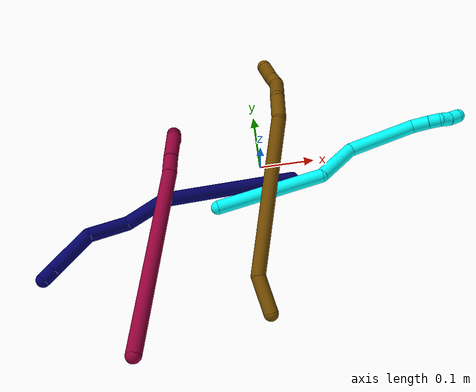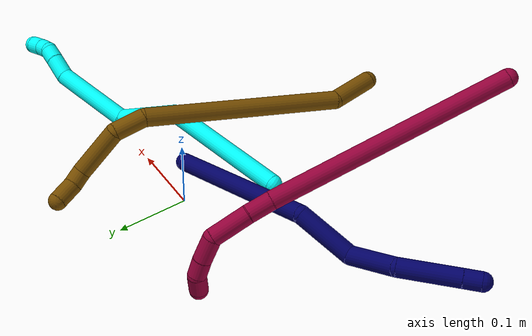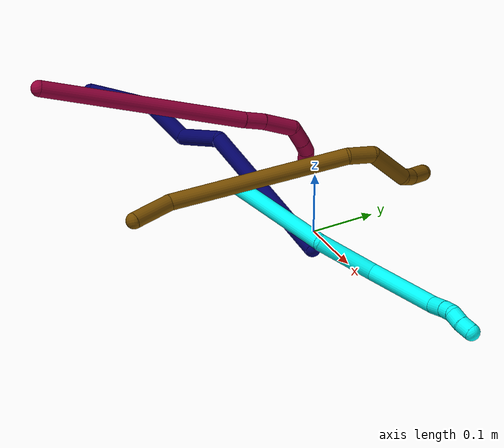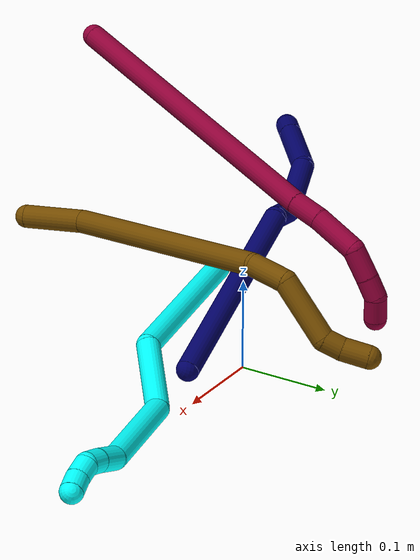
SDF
<sdf version="1.7">
 <world name="default">
  <model name="photoneo_s_sensor">
   <static>1</static>
   <pose>0 0 2 1.57079 1.57079 3.14159</pose>
   <link name="link">
    <inertial><mass>0.1</mass></inertial>
    <sensor name="sensor" type="depth">
     <update_rate>30</update_rate>
     <camera>
      <horizontal_fov>1.22</horizontal_fov>
      <image><width>1920</width><height>1200</height><format>B8G8R8</format></image>
      <clip><near>0.1</near><far>4</far></clip>
      <depth_camera><output>points</output></depth_camera>
     </camera>
     <plugin name="camera_plugin" filename="libgazebo_ros_depth_camera.so">
      <baseline>0.2</baseline>
      <alwaysOn>1</alwaysOn>
      <updateRate>0.0</updateRate>
      <cameraName>camera_ir</cameraName>
      <imageTopicName>/camera/color/image_raw</imageTopicName>
      <cameraInfoTopicName>/camera/color/camera_info</cameraInfoTopicName>
      <depthImageTopicName>/camera/depth/image_raw</depthImageTopicName>
      <depthImageCameraInfoTopicName>/camera/depth/camera_info</depthImageCameraInfoTopicName>
      <pointCloudTopicName>/camera/depth/points</pointCloudTopicName>
      <frameName>fr_optical</frameName>
      <pointCloudCutoff>0.1</pointCloudCutoff>
      <pointCloudCutoffMax>2.0</pointCloudCutoffMax>
      <distortionK1>0</distortionK1>
      <distortionK2>0</distortionK2>
      <distortionK3>0</distortionK3>
      <distortionT1>0</distortionT1>
      <distortionT2>0</distortionT2>
      <CxPrime>0</CxPrime>
      <Cx>0</Cx>
      <Cy>0</Cy>
      <focalLength>0</focalLength>
      <hackBaseline>0</hackBaseline>
     </plugin>
    </sensor>
   </link>
  </model>
  <model name="bin">
   <static>1</static>
   <link name="bottom">
    <collision name="collision-bottom">
     <pose>0 0 -0.01 0 -0 0</pose>
     <geometry><box><size>0.8 0.6 0.02</size></box></geometry>
     <surface>
      <friction><ode><mu>100</mu><mu2>100</mu2></ode></friction>
      <contact><collide_bitmask>65535</collide_bitmask></contact>
     </surface>
    </collision>
   </link>
   <link name="west_wall">
    <collision name="collision-west_wall">
     <pose>-0.41 0 0.1 0 -0 0</pose>
     <geometry><box><size>0.02 0.6 0.2</size></box></geometry>
     <surface>
      <friction><ode><mu>100</mu><mu2>100</mu2></ode></friction>
      <contact><collide_bitmask>65535</collide_bitmask></contact>
     </surface>
    </collision>
   </link>
   <link name="east_wall">
    <collision name="collision-east_wall">
     <pose>0.41 0 0.1 0 -0 0</pose>
     <geometry><box><size>0.02 0.6 0.2</size></box></geometry>
     <surface>
      <friction><ode><mu>100</mu><mu2>100</mu2></ode></friction>
      <contact><collide_bitmask>65535</collide_bitmask></contact>
     </surface>
    </collision>
   </link>
   <link name="south_wall">
    <collision name="collision-south_wall">
     <pose>0 -0.31 0.1 0 -0 0</pose>
     <geometry><box><size>0.8 0.02 0.2</size></box></geometry>
     <surface>
      <friction><ode><mu>100</mu><mu2>100</mu2></ode></friction>
      <contact><collide_bitmask>65535</collide_bitmask></contact>
     </surface>
    </collision>
   </link>
   <link name="north_wall">
    <collision name="collision-north_wall">
     <pose>0 0.31 0.1 0 -0 0</pose>
     <geometry><box><size>0.8 0.02 0.2</size></box></geometry>
     <surface>
      <friction><ode><mu>100</mu><mu2>100</mu2></ode></friction>
      <contact><collide_bitmask>65535</collide_bitmask></contact>
     </surface>
    </collision>
   </link>
  </model>
  <model name="3">
   <static>0</static>
   <link name="3">
    <collision name="collision-cylinder-e_1_1_4">
     <pose>0.067247 0.026626 0.06522 -0.387601 0.762175 -0.156953</pose>
     <geometry><cylinder><radius>0.0125</radius><length>0.194779</length></cylinder></geometry>
     <surface>
      <friction><ode><mu>1.16</mu><mu2>1.16</mu2><slip1>0</slip1><slip2>0</slip2></ode></friction>
      <contact><ode><kp>1e+06</kp><kd>1</kd><max_vel>0</max_vel><min_depth>0.001</min_depth></ode></contact>
     </surface>
    </collision>
    <visual name="visual-cylinder-e_1_1_4">
     <pose>0.067247 0.026626 0.06522 -0.387601 0.762175 -0.156953</pose>
     <geometry><cylinder><radius>0.0125</radius><length>0.194779</length></cylinder></geometry>
     <material><ambient>0.003922 1 0.996078 1</ambient></material>
    </visual>
    <collision name="collision-cylinder-e_2_4_5">
     <pose>0.152015 0.087111 0.152813 -0.986867 0.407554 -0.221362</pose>
     <geometry><cylinder><radius>0.0125</radius><length>0.088407</length></cylinder></geometry>
     <surface>
      <friction><ode><mu>1.16</mu><mu2>1.16</mu2><slip1>0</slip1><slip2>0</slip2></ode></friction>
      <contact><ode><kp>1e+06</kp><kd>1</kd><max_vel>0</max_vel><min_depth>0.001</min_depth></ode></contact>
     </surface>
    </collision>
    <visual name="visual-cylinder-e_2_4_5">
     <pose>0.152015 0.087111 0.152813 -0.986867 0.407554 -0.221362</pose>
     <geometry><cylinder><radius>0.0125</radius><length>0.088407</length></cylinder></geometry>
     <material><ambient>0.003922 1 0.996078 1</ambient></material>
    </visual>
    <collision name="collision-cylinder-e_3_5_6">
     <pose>0.209152 0.137318 0.220303 -0.347661 0.690135 -0.126073</pose>
     <geometry><cylinder><radius>0.0125</radius><length>0.124454</length></cylinder></geometry>
     <surface>
      <friction><ode><mu>1.16</mu><mu2>1.16</mu2><slip1>0</slip1><slip2>0</slip2></ode></friction>
      <contact><ode><kp>1e+06</kp><kd>1</kd><max_vel>0</max_vel><min_depth>0.001</min_depth></ode></contact>
     </surface>
    </collision>
    <visual name="visual-cylinder-e_3_5_6">
     <pose>0.209152 0.137318 0.220303 -0.347661 0.690135 -0.126073</pose>
     <geometry><cylinder><radius>0.0125</radius><length>0.124454</length></cylinder></geometry>
     <material><ambient>0.003922 1 0.996078 1</ambient></material>
    </visual>
    <collision name="collision-cylinder-e_4_6_7">
     <pose>0.258639 0.152165 0.277752 0.121227 0.671313 0.042336</pose>
     <geometry><cylinder><radius>0.0125</radius><length>0.031737</length></cylinder></geometry>
     <surface>
      <friction><ode><mu>1.16</mu><mu2>1.16</mu2><slip1>0</slip1><slip2>0</slip2></ode></friction>
      <contact><ode><kp>1e+06</kp><kd>1</kd><max_vel>0</max_vel><min_depth>0.001</min_depth></ode></contact>
     </surface>
    </collision>
    <visual name="visual-cylinder-e_4_6_7">
     <pose>0.258639 0.152165 0.277752 0.121227 0.671313 0.042336</pose>
     <geometry><cylinder><radius>0.0125</radius><length>0.031737</length></cylinder></geometry>
     <material><ambient>0.003922 1 0.996078 1</ambient></material>
    </visual>
    <collision name="collision-cylinder-e_5_7_8">
     <pose>0.275423 0.150243 0.297522 0.056295 0.748236 0.022107</pose>
     <geometry><cylinder><radius>0.0125</radius><length>0.020324</length></cylinder></geometry>
     <surface>
      <friction><ode><mu>1.16</mu><mu2>1.16</mu2><slip1>0</slip1><slip2>0</slip2></ode></friction>
      <contact><ode><kp>1e+06</kp><kd>1</kd><max_vel>0</max_vel><min_depth>0.001</min_depth></ode></contact>
     </surface>
    </collision>
    <visual name="visual-cylinder-e_5_7_8">
     <pose>0.275423 0.150243 0.297522 0.056295 0.748236 0.022107</pose>
     <geometry><cylinder><radius>0.0125</radius><length>0.020324</length></cylinder></geometry>
     <material><ambient>0.003922 1 0.996078 1</ambient></material>
    </visual>
    <collision name="collision-cylinder-e_6_8_9">
     <pose>0.290436 0.153939 0.309224 -0.767255 0.939043 -0.403984</pose>
     <geometry><cylinder><radius>0.0125</radius><length>0.020073</length></cylinder></geometry>
     <surface>
      <friction><ode><mu>1.16</mu><mu2>1.16</mu2><slip1>0</slip1><slip2>0</slip2></ode></friction>
      <contact><ode><kp>1e+06</kp><kd>1</kd><max_vel>0</max_vel><min_depth>0.001</min_depth></ode></contact>
     </surface>
    </collision>
    <visual name="visual-cylinder-e_6_8_9">
     <pose>0.290436 0.153939 0.309224 -0.767255 0.939043 -0.403984</pose>
     <geometry><cylinder><radius>0.0125</radius><length>0.020073</length></cylinder></geometry>
     <material><ambient>0.003922 1 0.996078 1</ambient></material>
    </visual>
    <collision name="collision-cylinder-e_7_9_2">
     <pose>0.30544 0.163079 0.318907 -0.748071 0.751541 -0.307266</pose>
     <geometry><cylinder><radius>0.0125</radius><length>0.020226</length></cylinder></geometry>
     <surface>
      <friction><ode><mu>1.16</mu><mu2>1.16</mu2><slip1>0</slip1><slip2>0</slip2></ode></friction>
      <contact><ode><kp>1e+06</kp><kd>1</kd><max_vel>0</max_vel><min_depth>0.001</min_depth></ode></contact>
     </surface>
    </collision>
    <visual name="visual-cylinder-e_7_9_2">
     <pose>0.30544 0.163079 0.318907 -0.748071 0.751541 -0.307266</pose>
     <geometry><cylinder><radius>0.0125</radius><length>0.020226</length></cylinder></geometry>
     <material><ambient>0.003922 1 0.996078 1</ambient></material>
    </visual>
    <collision name="collision-sphere-2">
     <pose>0.312345 0.168105 0.324323 0 -0 0</pose>
     <geometry><sphere><radius>0.0125</radius></sphere></geometry>
     <surface>
      <friction><ode><mu>1.16</mu><mu2>1.16</mu2><slip1>0</slip1><slip2>0</slip2></ode></friction>
      <contact><ode><kp>1e+06</kp><kd>1</kd><max_vel>0</max_vel><min_depth>0.001</min_depth></ode></contact>
     </surface>
    </collision>
    <visual name="visual-sphere-2">
     <pose>0.312345 0.168105 0.324323 0 -0 0</pose>
     <geometry><sphere><radius>0.0125</radius></sphere></geometry>
     <material><ambient>0.003922 1 0.996078 1</ambient></material>
    </visual>
    <collision name="collision-sphere-9">
     <pose>0.298535 0.158053 0.313491 0 -0 0</pose>
     <geometry><sphere><radius>0.0125</radius></sphere></geometry>
     <surface>
      <friction><ode><mu>1.16</mu><mu2>1.16</mu2><slip1>0</slip1><slip2>0</slip2></ode></friction>
      <contact><ode><kp>1e+06</kp><kd>1</kd><max_vel>0</max_vel><min_depth>0.001</min_depth></ode></contact>
     </surface>
    </collision>
    <visual name="visual-sphere-9">
     <pose>0.298535 0.158053 0.313491 0 -0 0</pose>
     <geometry><sphere><radius>0.0125</radius></sphere></geometry>
     <material><ambient>0.003922 1 0.996078 1</ambient></material>
    </visual>
    <collision name="collision-sphere-4">
     <pose>0.134494 0.053252 0.130439 0 -0 0</pose>
     <geometry><sphere><radius>0.0125</radius></sphere></geometry>
     <surface>
      <friction><ode><mu>1.16</mu><mu2>1.16</mu2><slip1>0</slip1><slip2>0</slip2></ode></friction>
      <contact><ode><kp>1e+06</kp><kd>1</kd><max_vel>0</max_vel><min_depth>0.001</min_depth></ode></contact>
     </surface>
    </collision>
    <visual name="visual-sphere-4">
     <pose>0.134494 0.053252 0.130439 0 -0 0</pose>
     <geometry><sphere><radius>0.0125</radius></sphere></geometry>
     <material><ambient>0.003922 1 0.996078 1</ambient></material>
    </visual>
    <collision name="collision-sphere-1">
     <geometry><sphere><radius>0.0125</radius></sphere></geometry>
     <surface>
      <friction><ode><mu>1.16</mu><mu2>1.16</mu2><slip1>0</slip1><slip2>0</slip2></ode></friction>
      <contact><ode><kp>1e+06</kp><kd>1</kd><max_vel>0</max_vel><min_depth>0.001</min_depth></ode></contact>
     </surface>
    </collision>
    <visual name="visual-sphere-1">
     <geometry><sphere><radius>0.0125</radius></sphere></geometry>
     <material><ambient>0.003922 1 0.996078 1</ambient></material>
    </visual>
    <collision name="collision-sphere-8">
     <pose>0.282337 0.149824 0.304958 0 -0 0</pose>
     <geometry><sphere><radius>0.0125</radius></sphere></geometry>
     <surface>
      <friction><ode><mu>1.16</mu><mu2>1.16</mu2><slip1>0</slip1><slip2>0</slip2></ode></friction>
      <contact><ode><kp>1e+06</kp><kd>1</kd><max_vel>0</max_vel><min_depth>0.001</min_depth></ode></contact>
     </surface>
    </collision>
    <visual name="visual-sphere-8">
     <pose>0.282337 0.149824 0.304958 0 -0 0</pose>
     <geometry><sphere><radius>0.0125</radius></sphere></geometry>
     <material><ambient>0.003922 1 0.996078 1</ambient></material>
    </visual>
    <collision name="collision-sphere-5">
     <pose>0.169536 0.120969 0.175187 0 -0 0</pose>
     <geometry><sphere><radius>0.0125</radius></sphere></geometry>
     <surface>
      <friction><ode><mu>1.16</mu><mu2>1.16</mu2><slip1>0</slip1><slip2>0</slip2></ode></friction>
      <contact><ode><kp>1e+06</kp><kd>1</kd><max_vel>0</max_vel><min_depth>0.001</min_depth></ode></contact>
     </surface>
    </collision>
    <visual name="visual-sphere-5">
     <pose>0.169536 0.120969 0.175187 0 -0 0</pose>
     <geometry><sphere><radius>0.0125</radius></sphere></geometry>
     <material><ambient>0.003922 1 0.996078 1</ambient></material>
    </visual>
    <collision name="collision-sphere-6">
     <pose>0.248768 0.153668 0.265418 0 -0 0</pose>
     <geometry><sphere><radius>0.0125</radius></sphere></geometry>
     <surface>
      <friction><ode><mu>1.16</mu><mu2>1.16</mu2><slip1>0</slip1><slip2>0</slip2></ode></friction>
      <contact><ode><kp>1e+06</kp><kd>1</kd><max_vel>0</max_vel><min_depth>0.001</min_depth></ode></contact>
     </surface>
    </collision>
    <visual name="visual-sphere-6">
     <pose>0.248768 0.153668 0.265418 0 -0 0</pose>
     <geometry><sphere><radius>0.0125</radius></sphere></geometry>
     <material><ambient>0.003922 1 0.996078 1</ambient></material>
    </visual>
    <collision name="collision-sphere-7">
     <pose>0.268509 0.150662 0.290086 0 -0 0</pose>
     <geometry><sphere><radius>0.0125</radius></sphere></geometry>
     <surface>
      <friction><ode><mu>1.16</mu><mu2>1.16</mu2><slip1>0</slip1><slip2>0</slip2></ode></friction>
      <contact><ode><kp>1e+06</kp><kd>1</kd><max_vel>0</max_vel><min_depth>0.001</min_depth></ode></contact>
     </surface>
    </collision>
    <visual name="visual-sphere-7">
     <pose>0.268509 0.150662 0.290086 0 -0 0</pose>
     <geometry><sphere><radius>0.0125</radius></sphere></geometry>
     <material><ambient>0.003922 1 0.996078 1</ambient></material>
    </visual>
    <inertial>
     <pose>0.156762 0.088497 0.1623 0 -0 0</pose>
     <mass>0.5</mass>
     <inertia>
      <ixx>0.000558</ixx>
      <ixy>0</ixy>
      <ixz>0</ixz>
      <iyy>0.000713</iyy>
      <iyz>0</iyz>
      <izz>-0.000802</izz>
     </inertia>
    </inertial>
   </link>
   <pose>-0.08728 -0.085244 0.059307 -0.835069 0.362016 -0.569411</pose>
  </model>
  <model name="7">
   <static>0</static>
   <link name="7">
    <collision name="collision-cylinder-e_1_1_4">
     <pose>0.011359 0.000989 -0.002343 -2.74195 1.35057 -2.64623</pose>
     <geometry><cylinder><radius>0.0125</radius><length>0.023281</length></cylinder></geometry>
     <surface>
      <friction><ode><mu>1.16</mu><mu2>1.16</mu2><slip1>0</slip1><slip2>0</slip2></ode></friction>
      <contact><ode><kp>1e+06</kp><kd>1</kd><max_vel>0</max_vel><min_depth>0.001</min_depth></ode></contact>
     </surface>
    </collision>
    <visual name="visual-cylinder-e_1_1_4">
     <pose>0.011359 0.000989 -0.002343 -2.74195 1.35057 -2.64623</pose>
     <geometry><cylinder><radius>0.0125</radius><length>0.023281</length></cylinder></geometry>
     <material><ambient>0.003922 0 0.403922 1</ambient></material>
    </visual>
    <collision name="collision-cylinder-e_2_4_5">
     <pose>0.061977 0.005655 -0.012671 -2.7102 1.35049 -2.60747</pose>
     <geometry><cylinder><radius>0.0125</radius><length>0.080462</length></cylinder></geometry>
     <surface>
      <friction><ode><mu>1.16</mu><mu2>1.16</mu2><slip1>0</slip1><slip2>0</slip2></ode></friction>
      <contact><ode><kp>1e+06</kp><kd>1</kd><max_vel>0</max_vel><min_depth>0.001</min_depth></ode></contact>
     </surface>
    </collision>
    <visual name="visual-cylinder-e_2_4_5">
     <pose>0.061977 0.005655 -0.012671 -2.7102 1.35049 -2.60747</pose>
     <geometry><cylinder><radius>0.0125</radius><length>0.080462</length></cylinder></geometry>
     <material><ambient>0.003922 0 0.403922 1</ambient></material>
    </visual>
    <collision name="collision-cylinder-e_3_5_6">
     <pose>0.128705 0.027955 -0.034258 -2.20152 0.872413 -1.48492</pose>
     <geometry><cylinder><radius>0.0125</radius><length>0.071733</length></cylinder></geometry>
     <surface>
      <friction><ode><mu>1.16</mu><mu2>1.16</mu2><slip1>0</slip1><slip2>0</slip2></ode></friction>
      <contact><ode><kp>1e+06</kp><kd>1</kd><max_vel>0</max_vel><min_depth>0.001</min_depth></ode></contact>
     </surface>
    </collision>
    <visual name="visual-cylinder-e_3_5_6">
     <pose>0.128705 0.027955 -0.034258 -2.20152 0.872413 -1.48492</pose>
     <geometry><cylinder><radius>0.0125</radius><length>0.071733</length></cylinder></geometry>
     <material><ambient>0.003922 0 0.403922 1</ambient></material>
    </visual>
    <collision name="collision-cylinder-e_4_6_7">
     <pose>0.186737 0.041406 -0.072871 2.93764 0.874633 2.71062</pose>
     <geometry><cylinder><radius>0.0125</radius><length>0.079663</length></cylinder></geometry>
     <surface>
      <friction><ode><mu>1.16</mu><mu2>1.16</mu2><slip1>0</slip1><slip2>0</slip2></ode></friction>
      <contact><ode><kp>1e+06</kp><kd>1</kd><max_vel>0</max_vel><min_depth>0.001</min_depth></ode></contact>
     </surface>
    </collision>
    <visual name="visual-cylinder-e_4_6_7">
     <pose>0.186737 0.041406 -0.072871 2.93764 0.874633 2.71062</pose>
     <geometry><cylinder><radius>0.0125</radius><length>0.079663</length></cylinder></geometry>
     <material><ambient>0.003922 0 0.403922 1</ambient></material>
    </visual>
    <collision name="collision-cylinder-e_5_7_2">
     <pose>0.300951 0.100164 -0.160372 -2.34477 0.752203 -1.50703</pose>
     <geometry><cylinder><radius>0.0125</radius><length>0.244862</length></cylinder></geometry>
     <surface>
      <friction><ode><mu>1.16</mu><mu2>1.16</mu2><slip1>0</slip1><slip2>0</slip2></ode></friction>
      <contact><ode><kp>1e+06</kp><kd>1</kd><max_vel>0</max_vel><min_depth>0.001</min_depth></ode></contact>
     </surface>
    </collision>
    <visual name="visual-cylinder-e_5_7_2">
     <pose>0.300951 0.100164 -0.160372 -2.34477 0.752203 -1.50703</pose>
     <geometry><cylinder><radius>0.0125</radius><length>0.244862</length></cylinder></geometry>
     <material><ambient>0.003922 0 0.403922 1</ambient></material>
    </visual>
    <collision name="collision-sphere-2">
     <pose>0.384602 0.164095 -0.22286 0 -0 0</pose>
     <geometry><sphere><radius>0.0125</radius></sphere></geometry>
     <surface>
      <friction><ode><mu>1.16</mu><mu2>1.16</mu2><slip1>0</slip1><slip2>0</slip2></ode></friction>
      <contact><ode><kp>1e+06</kp><kd>1</kd><max_vel>0</max_vel><min_depth>0.001</min_depth></ode></contact>
     </surface>
    </collision>
    <visual name="visual-sphere-2">
     <pose>0.384602 0.164095 -0.22286 0 -0 0</pose>
     <geometry><sphere><radius>0.0125</radius></sphere></geometry>
     <material><ambient>0.003922 0 0.403922 1</ambient></material>
    </visual>
    <collision name="collision-sphere-7">
     <pose>0.2173 0.036233 -0.097885 0 -0 0</pose>
     <geometry><sphere><radius>0.0125</radius></sphere></geometry>
     <surface>
      <friction><ode><mu>1.16</mu><mu2>1.16</mu2><slip1>0</slip1><slip2>0</slip2></ode></friction>
      <contact><ode><kp>1e+06</kp><kd>1</kd><max_vel>0</max_vel><min_depth>0.001</min_depth></ode></contact>
     </surface>
    </collision>
    <visual name="visual-sphere-7">
     <pose>0.2173 0.036233 -0.097885 0 -0 0</pose>
     <geometry><sphere><radius>0.0125</radius></sphere></geometry>
     <material><ambient>0.003922 0 0.403922 1</ambient></material>
    </visual>
    <collision name="collision-sphere-6">
     <pose>0.156174 0.04658 -0.047858 0 -0 0</pose>
     <geometry><sphere><radius>0.0125</radius></sphere></geometry>
     <surface>
      <friction><ode><mu>1.16</mu><mu2>1.16</mu2><slip1>0</slip1><slip2>0</slip2></ode></friction>
      <contact><ode><kp>1e+06</kp><kd>1</kd><max_vel>0</max_vel><min_depth>0.001</min_depth></ode></contact>
     </surface>
    </collision>
    <visual name="visual-sphere-6">
     <pose>0.156174 0.04658 -0.047858 0 -0 0</pose>
     <geometry><sphere><radius>0.0125</radius></sphere></geometry>
     <material><ambient>0.003922 0 0.403922 1</ambient></material>
    </visual>
    <collision name="collision-sphere-5">
     <pose>0.101236 0.009331 -0.020658 0 -0 0</pose>
     <geometry><sphere><radius>0.0125</radius></sphere></geometry>
     <surface>
      <friction><ode><mu>1.16</mu><mu2>1.16</mu2><slip1>0</slip1><slip2>0</slip2></ode></friction>
      <contact><ode><kp>1e+06</kp><kd>1</kd><max_vel>0</max_vel><min_depth>0.001</min_depth></ode></contact>
     </surface>
    </collision>
    <visual name="visual-sphere-5">
     <pose>0.101236 0.009331 -0.020658 0 -0 0</pose>
     <geometry><sphere><radius>0.0125</radius></sphere></geometry>
     <material><ambient>0.003922 0 0.403922 1</ambient></material>
    </visual>
    <collision name="collision-sphere-1">
     <geometry><sphere><radius>0.0125</radius></sphere></geometry>
     <surface>
      <friction><ode><mu>1.16</mu><mu2>1.16</mu2><slip1>0</slip1><slip2>0</slip2></ode></friction>
      <contact><ode><kp>1e+06</kp><kd>1</kd><max_vel>0</max_vel><min_depth>0.001</min_depth></ode></contact>
     </surface>
    </collision>
    <visual name="visual-sphere-1">
     <geometry><sphere><radius>0.0125</radius></sphere></geometry>
     <material><ambient>0.003922 0 0.403922 1</ambient></material>
    </visual>
    <collision name="collision-sphere-4">
     <pose>0.022718 0.001979 -0.004685 0 -0 0</pose>
     <geometry><sphere><radius>0.0125</radius></sphere></geometry>
     <surface>
      <friction><ode><mu>1.16</mu><mu2>1.16</mu2><slip1>0</slip1><slip2>0</slip2></ode></friction>
      <contact><ode><kp>1e+06</kp><kd>1</kd><max_vel>0</max_vel><min_depth>0.001</min_depth></ode></contact>
     </surface>
    </collision>
    <visual name="visual-sphere-4">
     <pose>0.022718 0.001979 -0.004685 0 -0 0</pose>
     <geometry><sphere><radius>0.0125</radius></sphere></geometry>
     <material><ambient>0.003922 0 0.403922 1</ambient></material>
    </visual>
    <inertial>
     <pose>0.206102 0.060617 -0.097211 0 -0 0</pose>
     <mass>0.5</mass>
     <inertia>
      <ixx>-0.000859</ixx>
      <ixy>0</ixy>
      <ixz>0</ixz>
      <iyy>-0.000244</iyy>
      <iyz>0</iyz>
      <izz>-0.001627</izz>
     </inertia>
    </inertial>
   </link>
   <pose>-0.388342 -0.180503 0.095433 -1.97352 0.053716 0.934993</pose>
  </model>
  <model name="8">
   <static>0</static>
   <link name="8">
    <collision name="collision-cylinder-e_1_1_4">
     <pose>-0.036107 0.13319 -0.09024 -2.16628 -0.220773 0.412023</pose>
     <geometry><cylinder><radius>0.0125</radius><length>0.329768</length></cylinder></geometry>
     <surface>
      <friction><ode><mu>1.16</mu><mu2>1.16</mu2><slip1>0</slip1><slip2>0</slip2></ode></friction>
      <contact><ode><kp>1e+06</kp><kd>1</kd><max_vel>0</max_vel><min_depth>0.001</min_depth></ode></contact>
     </surface>
    </collision>
    <visual name="visual-cylinder-e_1_1_4">
     <pose>-0.036107 0.13319 -0.09024 -2.16628 -0.220773 0.412023</pose>
     <geometry><cylinder><radius>0.0125</radius><length>0.329768</length></cylinder></geometry>
     <material><ambient>0.584314 0 0.227451 1</ambient></material>
    </visual>
    <collision name="collision-cylinder-e_2_4_5">
     <pose>-0.077264 0.279798 -0.189055 -2.13942 -0.307137 0.550848</pose>
     <geometry><cylinder><radius>0.0125</radius><length>0.03341</length></cylinder></geometry>
     <surface>
      <friction><ode><mu>1.16</mu><mu2>1.16</mu2><slip1>0</slip1><slip2>0</slip2></ode></friction>
      <contact><ode><kp>1e+06</kp><kd>1</kd><max_vel>0</max_vel><min_depth>0.001</min_depth></ode></contact>
     </surface>
    </collision>
    <visual name="visual-cylinder-e_2_4_5">
     <pose>-0.077264 0.279798 -0.189055 -2.13942 -0.307137 0.550848</pose>
     <geometry><cylinder><radius>0.0125</radius><length>0.03341</length></cylinder></geometry>
     <material><ambient>0.584314 0 0.227451 1</ambient></material>
    </visual>
    <collision name="collision-cylinder-e_3_5_6">
     <pose>-0.089598 0.312696 -0.213723 -2.2613 -0.280641 0.582762</pose>
     <geometry><cylinder><radius>0.0125</radius><length>0.052594</length></cylinder></geometry>
     <surface>
      <friction><ode><mu>1.16</mu><mu2>1.16</mu2><slip1>0</slip1><slip2>0</slip2></ode></friction>
      <contact><ode><kp>1e+06</kp><kd>1</kd><max_vel>0</max_vel><min_depth>0.001</min_depth></ode></contact>
     </surface>
    </collision>
    <visual name="visual-cylinder-e_3_5_6">
     <pose>-0.089598 0.312696 -0.213723 -2.2613 -0.280641 0.582762</pose>
     <geometry><cylinder><radius>0.0125</radius><length>0.052594</length></cylinder></geometry>
     <material><ambient>0.584314 0 0.227451 1</ambient></material>
    </visual>
    <collision name="collision-cylinder-e_4_6_7">
     <pose>-0.102273 0.334989 -0.245576 -2.96494 -0.324847 2.15068</pose>
     <geometry><cylinder><radius>0.0125</radius><length>0.033784</length></cylinder></geometry>
     <surface>
      <friction><ode><mu>1.16</mu><mu2>1.16</mu2><slip1>0</slip1><slip2>0</slip2></ode></friction>
      <contact><ode><kp>1e+06</kp><kd>1</kd><max_vel>0</max_vel><min_depth>0.001</min_depth></ode></contact>
     </surface>
    </collision>
    <visual name="visual-cylinder-e_4_6_7">
     <pose>-0.102273 0.334989 -0.245576 -2.96494 -0.324847 2.15068</pose>
     <geometry><cylinder><radius>0.0125</radius><length>0.033784</length></cylinder></geometry>
     <material><ambient>0.584314 0 0.227451 1</ambient></material>
    </visual>
    <collision name="collision-cylinder-e_5_7_8">
     <pose>-0.111644 0.338784 -0.272452 -3.05353 -0.342523 2.64272</pose>
     <geometry><cylinder><radius>0.0125</radius><length>0.023696</length></cylinder></geometry>
     <surface>
      <friction><ode><mu>1.16</mu><mu2>1.16</mu2><slip1>0</slip1><slip2>0</slip2></ode></friction>
      <contact><ode><kp>1e+06</kp><kd>1</kd><max_vel>0</max_vel><min_depth>0.001</min_depth></ode></contact>
     </surface>
    </collision>
    <visual name="visual-cylinder-e_5_7_8">
     <pose>-0.111644 0.338784 -0.272452 -3.05353 -0.342523 2.64272</pose>
     <geometry><cylinder><radius>0.0125</radius><length>0.023696</length></cylinder></geometry>
     <material><ambient>0.584314 0 0.227451 1</ambient></material>
    </visual>
    <collision name="collision-cylinder-e_6_8_2">
     <pose>-0.117562 0.335237 -0.296003 2.79234 -0.145533 -0.783648</pose>
     <geometry><cylinder><radius>0.0125</radius><length>0.026748</length></cylinder></geometry>
     <surface>
      <friction><ode><mu>1.16</mu><mu2>1.16</mu2><slip1>0</slip1><slip2>0</slip2></ode></friction>
      <contact><ode><kp>1e+06</kp><kd>1</kd><max_vel>0</max_vel><min_depth>0.001</min_depth></ode></contact>
     </surface>
    </collision>
    <visual name="visual-cylinder-e_6_8_2">
     <pose>-0.117562 0.335237 -0.296003 2.79234 -0.145533 -0.783648</pose>
     <geometry><cylinder><radius>0.0125</radius><length>0.026748</length></cylinder></geometry>
     <material><ambient>0.584314 0 0.227451 1</ambient></material>
    </visual>
    <collision name="collision-sphere-2">
     <pose>-0.119502 0.330709 -0.308437 0 -0 0</pose>
     <geometry><sphere><radius>0.0125</radius></sphere></geometry>
     <surface>
      <friction><ode><mu>1.16</mu><mu2>1.16</mu2><slip1>0</slip1><slip2>0</slip2></ode></friction>
      <contact><ode><kp>1e+06</kp><kd>1</kd><max_vel>0</max_vel><min_depth>0.001</min_depth></ode></contact>
     </surface>
    </collision>
    <visual name="visual-sphere-2">
     <pose>-0.119502 0.330709 -0.308437 0 -0 0</pose>
     <geometry><sphere><radius>0.0125</radius></sphere></geometry>
     <material><ambient>0.584314 0 0.227451 1</ambient></material>
    </visual>
    <collision name="collision-sphere-4">
     <pose>-0.072214 0.266381 -0.180481 0 -0 0</pose>
     <geometry><sphere><radius>0.0125</radius></sphere></geometry>
     <surface>
      <friction><ode><mu>1.16</mu><mu2>1.16</mu2><slip1>0</slip1><slip2>0</slip2></ode></friction>
      <contact><ode><kp>1e+06</kp><kd>1</kd><max_vel>0</max_vel><min_depth>0.001</min_depth></ode></contact>
     </surface>
    </collision>
    <visual name="visual-sphere-4">
     <pose>-0.072214 0.266381 -0.180481 0 -0 0</pose>
     <geometry><sphere><radius>0.0125</radius></sphere></geometry>
     <material><ambient>0.584314 0 0.227451 1</ambient></material>
    </visual>
    <collision name="collision-sphere-1">
     <geometry><sphere><radius>0.0125</radius></sphere></geometry>
     <surface>
      <friction><ode><mu>1.16</mu><mu2>1.16</mu2><slip1>0</slip1><slip2>0</slip2></ode></friction>
      <contact><ode><kp>1e+06</kp><kd>1</kd><max_vel>0</max_vel><min_depth>0.001</min_depth></ode></contact>
     </surface>
    </collision>
    <visual name="visual-sphere-1">
     <geometry><sphere><radius>0.0125</radius></sphere></geometry>
     <material><ambient>0.584314 0 0.227451 1</ambient></material>
    </visual>
    <collision name="collision-sphere-8">
     <pose>-0.115623 0.339765 -0.283569 0 -0 0</pose>
     <geometry><sphere><radius>0.0125</radius></sphere></geometry>
     <surface>
      <friction><ode><mu>1.16</mu><mu2>1.16</mu2><slip1>0</slip1><slip2>0</slip2></ode></friction>
      <contact><ode><kp>1e+06</kp><kd>1</kd><max_vel>0</max_vel><min_depth>0.001</min_depth></ode></contact>
     </surface>
    </collision>
    <visual name="visual-sphere-8">
     <pose>-0.115623 0.339765 -0.283569 0 -0 0</pose>
     <geometry><sphere><radius>0.0125</radius></sphere></geometry>
     <material><ambient>0.584314 0 0.227451 1</ambient></material>
    </visual>
    <collision name="collision-sphere-5">
     <pose>-0.082315 0.293216 -0.197629 0 -0 0</pose>
     <geometry><sphere><radius>0.0125</radius></sphere></geometry>
     <surface>
      <friction><ode><mu>1.16</mu><mu2>1.16</mu2><slip1>0</slip1><slip2>0</slip2></ode></friction>
      <contact><ode><kp>1e+06</kp><kd>1</kd><max_vel>0</max_vel><min_depth>0.001</min_depth></ode></contact>
     </surface>
    </collision>
    <visual name="visual-sphere-5">
     <pose>-0.082315 0.293216 -0.197629 0 -0 0</pose>
     <geometry><sphere><radius>0.0125</radius></sphere></geometry>
     <material><ambient>0.584314 0 0.227451 1</ambient></material>
    </visual>
    <collision name="collision-sphere-6">
     <pose>-0.096882 0.332176 -0.229817 0 -0 0</pose>
     <geometry><sphere><radius>0.0125</radius></sphere></geometry>
     <surface>
      <friction><ode><mu>1.16</mu><mu2>1.16</mu2><slip1>0</slip1><slip2>0</slip2></ode></friction>
      <contact><ode><kp>1e+06</kp><kd>1</kd><max_vel>0</max_vel><min_depth>0.001</min_depth></ode></contact>
     </surface>
    </collision>
    <visual name="visual-sphere-6">
     <pose>-0.096882 0.332176 -0.229817 0 -0 0</pose>
     <geometry><sphere><radius>0.0125</radius></sphere></geometry>
     <material><ambient>0.584314 0 0.227451 1</ambient></material>
    </visual>
    <collision name="collision-sphere-7">
     <pose>-0.107664 0.337802 -0.261336 0 -0 0</pose>
     <geometry><sphere><radius>0.0125</radius></sphere></geometry>
     <surface>
      <friction><ode><mu>1.16</mu><mu2>1.16</mu2><slip1>0</slip1><slip2>0</slip2></ode></friction>
      <contact><ode><kp>1e+06</kp><kd>1</kd><max_vel>0</max_vel><min_depth>0.001</min_depth></ode></contact>
     </surface>
    </collision>
    <visual name="visual-sphere-7">
     <pose>-0.107664 0.337802 -0.261336 0 -0 0</pose>
     <geometry><sphere><radius>0.0125</radius></sphere></geometry>
     <material><ambient>0.584314 0 0.227451 1</ambient></material>
    </visual>
    <inertial>
     <pose>-0.056892 0.196056 -0.139971 0 -0 0</pose>
     <mass>0.5</mass>
     <inertia>
      <ixx>0.003872</ixx>
      <ixy>0</ixy>
      <ixz>0</ixz>
      <iyy>-0.000118</iyy>
      <iyz>0</iyz>
      <izz>-0.001798</izz>
     </inertia>
    </inertial>
   </link>
   <pose>-0.23003 -0.337594 0.225012 0.286617 -0.096588 -0.42558</pose>
  </model>
  <model name="12">
   <static>0</static>
   <link name="12">
    <collision name="collision-cylinder-e_1_1_4">
     <pose>-0.003515 0.031221 0.010139 -1.25679 -0.106658 0.077539</pose>
     <geometry><cylinder><radius>0.0125</radius><length>0.066027</length></cylinder></geometry>
     <surface>
      <friction><ode><mu>1.16</mu><mu2>1.16</mu2><slip1>0</slip1><slip2>0</slip2></ode></friction>
      <contact><ode><kp>1e+06</kp><kd>1</kd><max_vel>0</max_vel><min_depth>0.001</min_depth></ode></contact>
     </surface>
    </collision>
    <visual name="visual-cylinder-e_1_1_4">
     <pose>-0.003515 0.031221 0.010139 -1.25679 -0.106658 0.077539</pose>
     <geometry><cylinder><radius>0.0125</radius><length>0.066027</length></cylinder></geometry>
     <material><ambient>0.466667 0.301961 0 1</ambient></material>
    </visual>
    <collision name="collision-cylinder-e_2_4_5">
     <pose>0.032508 0.19128 0.030096 -1.49474 0.296937 -0.275455</pose>
     <geometry><cylinder><radius>0.0125</radius><length>0.27025</length></cylinder></geometry>
     <surface>
      <friction><ode><mu>1.16</mu><mu2>1.16</mu2><slip1>0</slip1><slip2>0</slip2></ode></friction>
      <contact><ode><kp>1e+06</kp><kd>1</kd><max_vel>0</max_vel><min_depth>0.001</min_depth></ode></contact>
     </surface>
    </collision>
    <visual name="visual-cylinder-e_2_4_5">
     <pose>0.032508 0.19128 0.030096 -1.49474 0.296937 -0.275455</pose>
     <geometry><cylinder><radius>0.0125</radius><length>0.27025</length></cylinder></geometry>
     <material><ambient>0.466667 0.301961 0 1</ambient></material>
    </visual>
    <collision name="collision-cylinder-e_3_5_6">
     <pose>0.070901 0.341372 0.038839 -1.62131 -0.053656 0.056436</pose>
     <geometry><cylinder><radius>0.0125</radius><length>0.042622</length></cylinder></geometry>
     <surface>
      <friction><ode><mu>1.16</mu><mu2>1.16</mu2><slip1>0</slip1><slip2>0</slip2></ode></friction>
      <contact><ode><kp>1e+06</kp><kd>1</kd><max_vel>0</max_vel><min_depth>0.001</min_depth></ode></contact>
     </surface>
    </collision>
    <visual name="visual-cylinder-e_3_5_6">
     <pose>0.070901 0.341372 0.038839 -1.62131 -0.053656 0.056436</pose>
     <geometry><cylinder><radius>0.0125</radius><length>0.042622</length></cylinder></geometry>
     <material><ambient>0.466667 0.301961 0 1</ambient></material>
    </visual>
    <collision name="collision-cylinder-e_4_6_7">
     <pose>0.055787 0.38965 0.020015 -2.15194 -0.407889 0.732023</pose>
     <geometry><cylinder><radius>0.0125</radius><length>0.070443</length></cylinder></geometry>
     <surface>
      <friction><ode><mu>1.16</mu><mu2>1.16</mu2><slip1>0</slip1><slip2>0</slip2></ode></friction>
      <contact><ode><kp>1e+06</kp><kd>1</kd><max_vel>0</max_vel><min_depth>0.001</min_depth></ode></contact>
     </surface>
    </collision>
    <visual name="visual-cylinder-e_4_6_7">
     <pose>0.055787 0.38965 0.020015 -2.15194 -0.407889 0.732023</pose>
     <geometry><cylinder><radius>0.0125</radius><length>0.070443</length></cylinder></geometry>
     <material><ambient>0.466667 0.301961 0 1</ambient></material>
    </visual>
    <collision name="collision-cylinder-e_5_7_8">
     <pose>0.036209 0.425666 0.00237 -1.5591 -0.557485 0.551329</pose>
     <geometry><cylinder><radius>0.0125</radius><length>0.021195</length></cylinder></geometry>
     <surface>
      <friction><ode><mu>1.16</mu><mu2>1.16</mu2><slip1>0</slip1><slip2>0</slip2></ode></friction>
      <contact><ode><kp>1e+06</kp><kd>1</kd><max_vel>0</max_vel><min_depth>0.001</min_depth></ode></contact>
     </surface>
    </collision>
    <visual name="visual-cylinder-e_5_7_8">
     <pose>0.036209 0.425666 0.00237 -1.5591 -0.557485 0.551329</pose>
     <geometry><cylinder><radius>0.0125</radius><length>0.021195</length></cylinder></geometry>
     <material><ambient>0.466667 0.301961 0 1</ambient></material>
    </visual>
    <collision name="collision-cylinder-e_6_8_2">
     <pose>0.024909 0.448016 0.004959 -1.38699 -0.3968 0.33117</pose>
     <geometry><cylinder><radius>0.0125</radius><length>0.029461</length></cylinder></geometry>
     <surface>
      <friction><ode><mu>1.16</mu><mu2>1.16</mu2><slip1>0</slip1><slip2>0</slip2></ode></friction>
      <contact><ode><kp>1e+06</kp><kd>1</kd><max_vel>0</max_vel><min_depth>0.001</min_depth></ode></contact>
     </surface>
    </collision>
    <visual name="visual-cylinder-e_6_8_2">
     <pose>0.024909 0.448016 0.004959 -1.38699 -0.3968 0.33117</pose>
     <geometry><cylinder><radius>0.0125</radius><length>0.029461</length></cylinder></geometry>
     <material><ambient>0.466667 0.301961 0 1</ambient></material>
    </visual>
    <collision name="collision-sphere-2">
     <pose>0.019216 0.461373 0.007442 0 -0 0</pose>
     <geometry><sphere><radius>0.0125</radius></sphere></geometry>
     <surface>
      <friction><ode><mu>1.16</mu><mu2>1.16</mu2><slip1>0</slip1><slip2>0</slip2></ode></friction>
      <contact><ode><kp>1e+06</kp><kd>1</kd><max_vel>0</max_vel><min_depth>0.001</min_depth></ode></contact>
     </surface>
    </collision>
    <visual name="visual-sphere-2">
     <pose>0.019216 0.461373 0.007442 0 -0 0</pose>
     <geometry><sphere><radius>0.0125</radius></sphere></geometry>
     <material><ambient>0.466667 0.301961 0 1</ambient></material>
    </visual>
    <collision name="collision-sphere-4">
     <pose>-0.007029 0.062442 0.020278 0 -0 0</pose>
     <geometry><sphere><radius>0.0125</radius></sphere></geometry>
     <surface>
      <friction><ode><mu>1.16</mu><mu2>1.16</mu2><slip1>0</slip1><slip2>0</slip2></ode></friction>
      <contact><ode><kp>1e+06</kp><kd>1</kd><max_vel>0</max_vel><min_depth>0.001</min_depth></ode></contact>
     </surface>
    </collision>
    <visual name="visual-sphere-4">
     <pose>-0.007029 0.062442 0.020278 0 -0 0</pose>
     <geometry><sphere><radius>0.0125</radius></sphere></geometry>
     <material><ambient>0.466667 0.301961 0 1</ambient></material>
    </visual>
    <collision name="collision-sphere-1">
     <geometry><sphere><radius>0.0125</radius></sphere></geometry>
     <surface>
      <friction><ode><mu>1.16</mu><mu2>1.16</mu2><slip1>0</slip1><slip2>0</slip2></ode></friction>
      <contact><ode><kp>1e+06</kp><kd>1</kd><max_vel>0</max_vel><min_depth>0.001</min_depth></ode></contact>
     </surface>
    </collision>
    <visual name="visual-sphere-1">
     <geometry><sphere><radius>0.0125</radius></sphere></geometry>
     <material><ambient>0.466667 0.301961 0 1</ambient></material>
    </visual>
    <collision name="collision-sphere-8">
     <pose>0.030602 0.434659 0.002476 0 -0 0</pose>
     <geometry><sphere><radius>0.0125</radius></sphere></geometry>
     <surface>
      <friction><ode><mu>1.16</mu><mu2>1.16</mu2><slip1>0</slip1><slip2>0</slip2></ode></friction>
      <contact><ode><kp>1e+06</kp><kd>1</kd><max_vel>0</max_vel><min_depth>0.001</min_depth></ode></contact>
     </surface>
    </collision>
    <visual name="visual-sphere-8">
     <pose>0.030602 0.434659 0.002476 0 -0 0</pose>
     <geometry><sphere><radius>0.0125</radius></sphere></geometry>
     <material><ambient>0.466667 0.301961 0 1</ambient></material>
    </visual>
    <collision name="collision-sphere-5">
     <pose>0.072044 0.320119 0.039914 0 -0 0</pose>
     <geometry><sphere><radius>0.0125</radius></sphere></geometry>
     <surface>
      <friction><ode><mu>1.16</mu><mu2>1.16</mu2><slip1>0</slip1><slip2>0</slip2></ode></friction>
      <contact><ode><kp>1e+06</kp><kd>1</kd><max_vel>0</max_vel><min_depth>0.001</min_depth></ode></contact>
     </surface>
    </collision>
    <visual name="visual-sphere-5">
     <pose>0.072044 0.320119 0.039914 0 -0 0</pose>
     <geometry><sphere><radius>0.0125</radius></sphere></geometry>
     <material><ambient>0.466667 0.301961 0 1</ambient></material>
    </visual>
    <collision name="collision-sphere-6">
     <pose>0.069758 0.362625 0.037764 0 -0 0</pose>
     <geometry><sphere><radius>0.0125</radius></sphere></geometry>
     <surface>
      <friction><ode><mu>1.16</mu><mu2>1.16</mu2><slip1>0</slip1><slip2>0</slip2></ode></friction>
      <contact><ode><kp>1e+06</kp><kd>1</kd><max_vel>0</max_vel><min_depth>0.001</min_depth></ode></contact>
     </surface>
    </collision>
    <visual name="visual-sphere-6">
     <pose>0.069758 0.362625 0.037764 0 -0 0</pose>
     <geometry><sphere><radius>0.0125</radius></sphere></geometry>
     <material><ambient>0.466667 0.301961 0 1</ambient></material>
    </visual>
    <collision name="collision-sphere-7">
     <pose>0.041816 0.416674 0.002265 0 -0 0</pose>
     <geometry><sphere><radius>0.0125</radius></sphere></geometry>
     <surface>
      <friction><ode><mu>1.16</mu><mu2>1.16</mu2><slip1>0</slip1><slip2>0</slip2></ode></friction>
      <contact><ode><kp>1e+06</kp><kd>1</kd><max_vel>0</max_vel><min_depth>0.001</min_depth></ode></contact>
     </surface>
    </collision>
    <visual name="visual-sphere-7">
     <pose>0.041816 0.416674 0.002265 0 -0 0</pose>
     <geometry><sphere><radius>0.0125</radius></sphere></geometry>
     <material><ambient>0.466667 0.301961 0 1</ambient></material>
    </visual>
    <inertial>
     <pose>0.034012 0.235949 0.024129 0 -0 0</pose>
     <mass>0.5</mass>
     <inertia>
      <ixx>0.001178</ixx>
      <ixy>0</ixy>
      <ixz>0</ixz>
      <iyy>-0.000115</iyy>
      <iyz>0</iyz>
      <izz>-0.002106</izz>
     </inertia>
    </inertial>
   </link>
   <pose>-0.022267 -0.288504 0.096008 -0.126714 -0.710077 -0.011278</pose>
  </model>
 </world>
</sdf>
